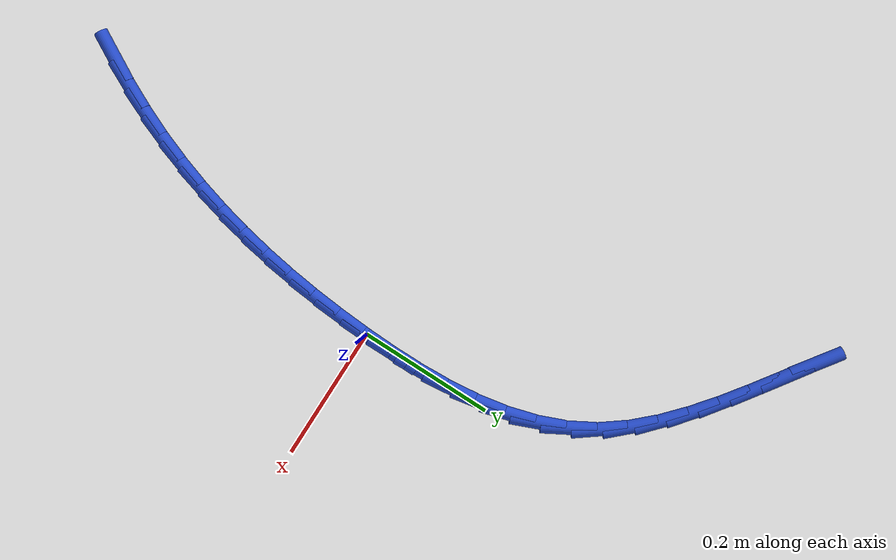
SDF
<sdf version="1.6">
 <world name="default">
  <model name="ground_plane">
   <static>1</static>
   <link name="link">
    <collision name="collision">
     <geometry><plane><normal>0 0 1</normal><size>100 100</size></plane></geometry>
     <surface><friction><ode><mu>100</mu><mu2>50</mu2></ode></friction></surface>
    </collision>
    <visual name="visual">
     <cast_shadows>0</cast_shadows>
     <geometry><plane><normal>0 0 1</normal><size>100 100</size></plane></geometry>
     <material>
      <script><uri>file://media/materials/scripts/gazebo.material</uri><name>Gazebo/WhiteGlow</name></script>
     </material>
    </visual>
   </link>
  </model>
  <model name="line">
   <link name="link_0">
    <pose>2.168404344971009e-19 0.0 0.01 0 1.57 1.5390488957896642</pose>
    <collision name="collision">
     <geometry><cylinder><radius>0.01</radius><length>0.08</length></cylinder></geometry>
    </collision>
    <visual name="visual">
     <material>
      <script><name>Gazebo/Blue</name><uri>file://media/materials/scripts/gazebo.material</uri></script>
     </material>
     <geometry><cylinder><radius>0.01</radius><length>0.08</length></cylinder></geometry>
    </visual>
   </link>
   <link name="link_1">
    <pose>0.0014721222336362635 0.04635422678655623 0.01 0 1.57 -1.5658661433238312</pose>
    <collision name="collision">
     <geometry><cylinder><radius>0.01</radius><length>0.08</length></cylinder></geometry>
    </collision>
    <visual name="visual">
     <material>
      <script><name>Gazebo/Blue</name><uri>file://media/materials/scripts/gazebo.material</uri></script>
     </material>
     <geometry><cylinder><radius>0.01</radius><length>0.08</length></cylinder></geometry>
    </visual>
   </link>
   <link name="link_2">
    <pose>0.001242675760363433 0.09289298454006431 0.01 0 1.57 -1.5177054942123234</pose>
    <collision name="collision">
     <geometry><cylinder><radius>0.01</radius><length>0.08</length></cylinder></geometry>
    </collision>
    <visual name="visual">
     <material>
      <script><name>Gazebo/Blue</name><uri>file://media/materials/scripts/gazebo.material</uri></script>
     </material>
     <geometry><cylinder><radius>0.01</radius><length>0.08</length></cylinder></geometry>
    </visual>
   </link>
   <link name="link_3">
    <pose>-0.001215517973724256 0.1391511348769408 0.01 0 1.57 -1.4567288402673002</pose>
    <collision name="collision">
     <geometry><cylinder><radius>0.01</radius><length>0.08</length></cylinder></geometry>
    </collision>
    <visual name="visual">
     <material>
      <script><name>Gazebo/Blue</name><uri>file://media/materials/scripts/gazebo.material</uri></script>
     </material>
     <geometry><cylinder><radius>0.01</radius><length>0.08</length></cylinder></geometry>
    </visual>
   </link>
   <link name="link_4">
    <pose>-0.006429637522532561 0.18466353941360214 0.01 0 1.57 -1.3812934842537212</pose>
    <collision name="collision">
     <geometry><cylinder><radius>0.01</radius><length>0.08</length></cylinder></geometry>
    </collision>
    <visual name="visual">
     <material>
      <script><name>Gazebo/Blue</name><uri>file://media/materials/scripts/gazebo.material</uri></script>
     </material>
     <geometry><cylinder><radius>0.01</radius><length>0.08</length></cylinder></geometry>
    </visual>
   </link>
   <link name="link_5">
    <pose>-0.014926861439967248 0.22896505976646497 0.01 0 1.57 -1.2897054352338209</pose>
    <collision name="collision">
     <geometry><cylinder><radius>0.01</radius><length>0.08</length></cylinder></geometry>
    </collision>
    <visual name="visual">
     <material>
      <script><name>Gazebo/Blue</name><uri>file://media/materials/scripts/gazebo.material</uri></script>
     </material>
     <geometry><cylinder><radius>0.01</radius><length>0.08</length></cylinder></geometry>
    </visual>
   </link>
   <link name="link_6">
    <pose>-0.027234368279934064 0.2715905575519456 0.01 0 1.57 -1.1807185123168167</pose>
    <collision name="collision">
     <geometry><cylinder><radius>0.01</radius><length>0.08</length></cylinder></geometry>
    </collision>
    <visual name="visual">
     <material>
      <script><name>Gazebo/Blue</name><uri>file://media/materials/scripts/gazebo.material</uri></script>
     </material>
     <geometry><cylinder><radius>0.01</radius><length>0.08</length></cylinder></geometry>
    </visual>
   </link>
   <link name="link_7">
    <pose>-0.04387933659633879 0.31207489438646085 0.01 0 1.57 -1.0544038282959072</pose>
    <collision name="collision">
     <geometry><cylinder><radius>0.01</radius><length>0.08</length></cylinder></geometry>
    </collision>
    <visual name="visual">
     <material>
      <script><name>Gazebo/Blue</name><uri>file://media/materials/scripts/gazebo.material</uri></script>
     </material>
     <geometry><cylinder><radius>0.01</radius><length>0.08</length></cylinder></geometry>
    </visual>
   </link>
   <link name="link_8">
    <pose>-0.06538665243420566 0.3499544556711538 0.01 0 1.57 -0.9239087075336251</pose>
    <collision name="collision">
     <geometry><cylinder><radius>0.01</radius><length>0.08</length></cylinder></geometry>
    </collision>
    <visual name="visual">
     <material>
      <script><name>Gazebo/Blue</name><uri>file://media/materials/scripts/gazebo.material</uri></script>
     </material>
     <geometry><cylinder><radius>0.01</radius><length>0.08</length></cylinder></geometry>
    </visual>
   </link>
   <link name="link_9">
    <pose>-0.091880744946308 0.38503180248096447 0.01 0 1.57 -0.8152841722291819</pose>
    <collision name="collision">
     <geometry><cylinder><radius>0.01</radius><length>0.08</length></cylinder></geometry>
    </collision>
    <visual name="visual">
     <material>
      <script><name>Gazebo/Blue</name><uri>file://media/materials/scripts/gazebo.material</uri></script>
     </material>
     <geometry><cylinder><radius>0.01</radius><length>0.08</length></cylinder></geometry>
    </visual>
   </link>
   <link name="link_10">
    <pose>-0.12263132391835779 0.41767761073124665 0.01 0 1.57 -0.7313215988986559</pose>
    <collision name="collision">
     <geometry><cylinder><radius>0.01</radius><length>0.08</length></cylinder></geometry>
    </collision>
    <visual name="visual">
     <material>
      <script><name>Gazebo/Blue</name><uri>file://media/materials/scripts/gazebo.material</uri></script>
     </material>
     <geometry><cylinder><radius>0.01</radius><length>0.08</length></cylinder></geometry>
    </visual>
   </link>
   <link name="link_11">
    <pose>-0.1567982270477632 0.4483355861133468 0.01 0 1.57 -0.6700669063821367</pose>
    <collision name="collision">
     <geometry><cylinder><radius>0.01</radius><length>0.08</length></cylinder></geometry>
    </collision>
    <visual name="visual">
     <material>
      <script><name>Gazebo/Blue</name><uri>file://media/materials/scripts/gazebo.material</uri></script>
     </material>
     <geometry><cylinder><radius>0.01</radius><length>0.08</length></cylinder></geometry>
    </visual>
   </link>
   <link name="link_12">
    <pose>-0.19354129203193238 0.4774494343186114 0.01 0 1.57 -0.6292831395808915</pose>
    <collision name="collision">
     <geometry><cylinder><radius>0.01</radius><length>0.08</length></cylinder></geometry>
    </collision>
    <visual name="visual">
     <material>
      <script><name>Gazebo/Blue</name><uri>file://media/materials/scripts/gazebo.material</uri></script>
     </material>
     <geometry><cylinder><radius>0.01</radius><length>0.08</length></cylinder></geometry>
    </visual>
   </link>
   <link name="link_13">
    <pose>-0.23202035656827363 0.5054628610383869 0.01 0 1.57 -0.6072108702370764</pose>
    <collision name="collision">
     <geometry><cylinder><radius>0.01</radius><length>0.08</length></cylinder></geometry>
    </collision>
    <visual name="visual">
     <material>
      <script><name>Gazebo/Blue</name><uri>file://media/materials/scripts/gazebo.material</uri></script>
     </material>
     <geometry><cylinder><radius>0.01</radius><length>0.08</length></cylinder></geometry>
    </visual>
   </link>
   <link name="link_14">
    <pose>-0.27139525835419503 0.5328195719640196 0.01 0 1.57 -0.602892926813047</pose>
    <collision name="collision">
     <geometry><cylinder><radius>0.01</radius><length>0.08</length></cylinder></geometry>
    </collision>
    <visual name="visual">
     <material>
      <script><name>Gazebo/Blue</name><uri>file://media/materials/scripts/gazebo.material</uri></script>
     </material>
     <geometry><cylinder><radius>0.01</radius><length>0.08</length></cylinder></geometry>
    </visual>
   </link>
   <link name="link_15">
    <pose>-0.31082583508710493 0.5599632727868563 0.01 0 1.57 -0.6162983693012791</pose>
    <collision name="collision">
     <geometry><cylinder><radius>0.01</radius><length>0.08</length></cylinder></geometry>
    </collision>
    <visual name="visual">
     <material>
      <script><name>Gazebo/Blue</name><uri>file://media/materials/scripts/gazebo.material</uri></script>
     </material>
     <geometry><cylinder><radius>0.01</radius><length>0.08</length></cylinder></geometry>
    </visual>
   </link>
   <link name="link_168">
    <pose>-0.1387442993244618 -0.5137977719273471 0.01 0 1.57 1.063307977878812</pose>
    <collision name="collision">
     <geometry><cylinder><radius>0.01</radius><length>0.08</length></cylinder></geometry>
    </collision>
    <visual name="visual">
     <material>
      <script><name>Gazebo/Blue</name><uri>file://media/materials/scripts/gazebo.material</uri></script>
     </material>
     <geometry><cylinder><radius>0.01</radius><length>0.08</length></cylinder></geometry>
    </visual>
   </link>
   <link name="link_169">
    <pose>-0.11686779961091956 -0.47445620764651675 0.01 0 1.57 1.114306065922824</pose>
    <collision name="collision">
     <geometry><cylinder><radius>0.01</radius><length>0.08</length></cylinder></geometry>
    </collision>
    <visual name="visual">
     <material>
      <script><name>Gazebo/Blue</name><uri>file://media/materials/scripts/gazebo.material</uri></script>
     </material>
     <geometry><cylinder><radius>0.01</radius><length>0.08</length></cylinder></geometry>
    </visual>
   </link>
   <link name="link_170">
    <pose>-0.09704565348564617 -0.4340922310413627 0.01 0 1.57 1.1629487065477797</pose>
    <collision name="collision">
     <geometry><cylinder><radius>0.01</radius><length>0.08</length></cylinder></geometry>
    </collision>
    <visual name="visual">
     <material>
      <script><name>Gazebo/Blue</name><uri>file://media/materials/scripts/gazebo.material</uri></script>
     </material>
     <geometry><cylinder><radius>0.01</radius><length>0.08</length></cylinder></geometry>
    </visual>
   </link>
   <link name="link_171">
    <pose>-0.07925098561386507 -0.39290798392932924 0.01 0 1.57 1.2095495242208325</pose>
    <collision name="collision">
     <geometry><cylinder><radius>0.01</radius><length>0.08</length></cylinder></geometry>
    </collision>
    <visual name="visual">
     <material>
      <script><name>Gazebo/Blue</name><uri>file://media/materials/scripts/gazebo.material</uri></script>
     </material>
     <geometry><cylinder><radius>0.01</radius><length>0.08</length></cylinder></geometry>
    </visual>
   </link>
   <link name="link_172">
    <pose>-0.06345692066079828 -0.35110560812785757 0.01 0 1.57 1.2544418128589732</pose>
    <collision name="collision">
     <geometry><cylinder><radius>0.01</radius><length>0.08</length></cylinder></geometry>
    </collision>
    <visual name="visual">
     <material>
      <script><name>Gazebo/Blue</name><uri>file://media/materials/scripts/gazebo.material</uri></script>
     </material>
     <geometry><cylinder><radius>0.01</radius><length>0.08</length></cylinder></geometry>
    </visual>
   </link>
   <link name="link_173">
    <pose>-0.049630551278182035 -0.30886813970522464 0.01 0 1.57 1.2977914788425329</pose>
    <collision name="collision">
     <geometry><cylinder><radius>0.01</radius><length>0.08</length></cylinder></geometry>
    </collision>
    <visual name="visual">
     <material>
      <script><name>Gazebo/Blue</name><uri>file://media/materials/scripts/gazebo.material</uri></script>
     </material>
     <geometry><cylinder><radius>0.01</radius><length>0.08</length></cylinder></geometry>
    </visual>
   </link>
   <link name="link_174">
    <pose>-0.037692045745705546 -0.26622998686538196 0.01 0 1.57 1.3393232698961879</pose>
    <collision name="collision">
     <geometry><cylinder><radius>0.01</radius><length>0.08</length></cylinder></geometry>
    </collision>
    <visual name="visual">
     <material>
      <script><name>Gazebo/Blue</name><uri>file://media/materials/scripts/gazebo.material</uri></script>
     </material>
     <geometry><cylinder><radius>0.01</radius><length>0.08</length></cylinder></geometry>
    </visual>
   </link>
   <link name="link_175">
    <pose>-0.02753958712905109 -0.2231559220289546 0.01 0 1.57 1.3787227764048509</pose>
    <collision name="collision">
     <geometry><cylinder><radius>0.01</radius><length>0.08</length></cylinder></geometry>
    </collision>
    <visual name="visual">
     <material>
      <script><name>Gazebo/Blue</name><uri>file://media/materials/scripts/gazebo.material</uri></script>
     </material>
     <geometry><cylinder><radius>0.01</radius><length>0.08</length></cylinder></geometry>
    </visual>
   </link>
   <link name="link_176">
    <pose>-0.019071232634415385 -0.17961031897028312 0.01 0 1.57 1.4157342552422545</pose>
    <collision name="collision">
     <geometry><cylinder><radius>0.01</radius><length>0.08</length></cylinder></geometry>
    </collision>
    <visual name="visual">
     <material>
      <script><name>Gazebo/Blue</name><uri>file://media/materials/scripts/gazebo.material</uri></script>
     </material>
     <geometry><cylinder><radius>0.01</radius><length>0.08</length></cylinder></geometry>
    </visual>
   </link>
   <link name="link_177">
    <pose>-0.01218503946799565 -0.13555755146371093 0.01 0 1.57 1.4501626599810307</pose>
    <collision name="collision">
     <geometry><cylinder><radius>0.01</radius><length>0.08</length></cylinder></geometry>
    </collision>
    <visual name="visual">
     <material>
      <script><name>Gazebo/Blue</name><uri>file://media/materials/scripts/gazebo.material</uri></script>
     </material>
     <geometry><cylinder><radius>0.01</radius><length>0.08</length></cylinder></geometry>
    </visual>
   </link>
   <link name="link_178">
    <pose>-0.0067790648359885896 -0.09096199328357862 0.01 0 1.57 1.481871745077881</pose>
    <collision name="collision">
     <geometry><cylinder><radius>0.01</radius><length>0.08</length></cylinder></geometry>
    </collision>
    <visual name="visual">
     <material>
      <script><name>Gazebo/Blue</name><uri>file://media/materials/scripts/gazebo.material</uri></script>
     </material>
     <geometry><cylinder><radius>0.01</radius><length>0.08</length></cylinder></geometry>
    </visual>
   </link>
   <link name="link_179">
    <pose>-0.002751365944591081 -0.04578801820422786 0.01 0 1.57 1.5107792799055089</pose>
    <collision name="collision">
     <geometry><cylinder><radius>0.01</radius><length>0.08</length></cylinder></geometry>
    </collision>
    <visual name="visual">
     <material>
      <script><name>Gazebo/Blue</name><uri>file://media/materials/scripts/gazebo.material</uri></script>
     </material>
     <geometry><cylinder><radius>0.01</radius><length>0.08</length></cylinder></geometry>
    </visual>
   </link>
   <link name="link_180">
    <pose>-1.6263032587282567e-17 -1.8735013540549517e-16 0.01 0 1.57 1.5368504070416467</pose>
    <collision name="collision">
     <geometry><cylinder><radius>0.01</radius><length>0.08</length></cylinder></geometry>
    </collision>
    <visual name="visual">
     <material>
      <script><name>Gazebo/Blue</name><uri>file://media/materials/scripts/gazebo.material</uri></script>
     </material>
     <geometry><cylinder><radius>0.01</radius><length>0.08</length></cylinder></geometry>
    </visual>
   </link>
   <link name="link_181">
    <pose>0.0015769757915877268 0.046437687554762845 0.01 0 1.57 1.5368504070416469</pose>
    <collision name="collision">
     <geometry><cylinder><radius>0.01</radius><length>0.08</length></cylinder></geometry>
    </collision>
    <visual name="visual">
     <material>
      <script><name>Gazebo/Blue</name><uri>file://media/materials/scripts/gazebo.material</uri></script>
     </material>
     <geometry><cylinder><radius>0.01</radius><length>0.08</length></cylinder></geometry>
    </visual>
   </link>
  </model>
 </world>
</sdf>
